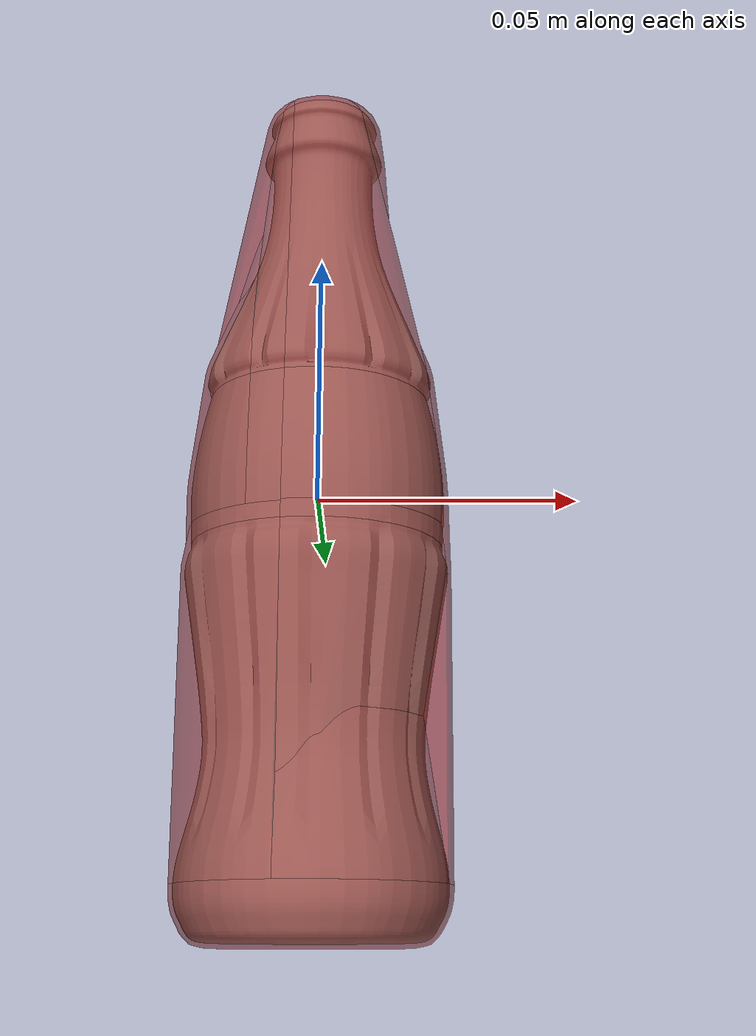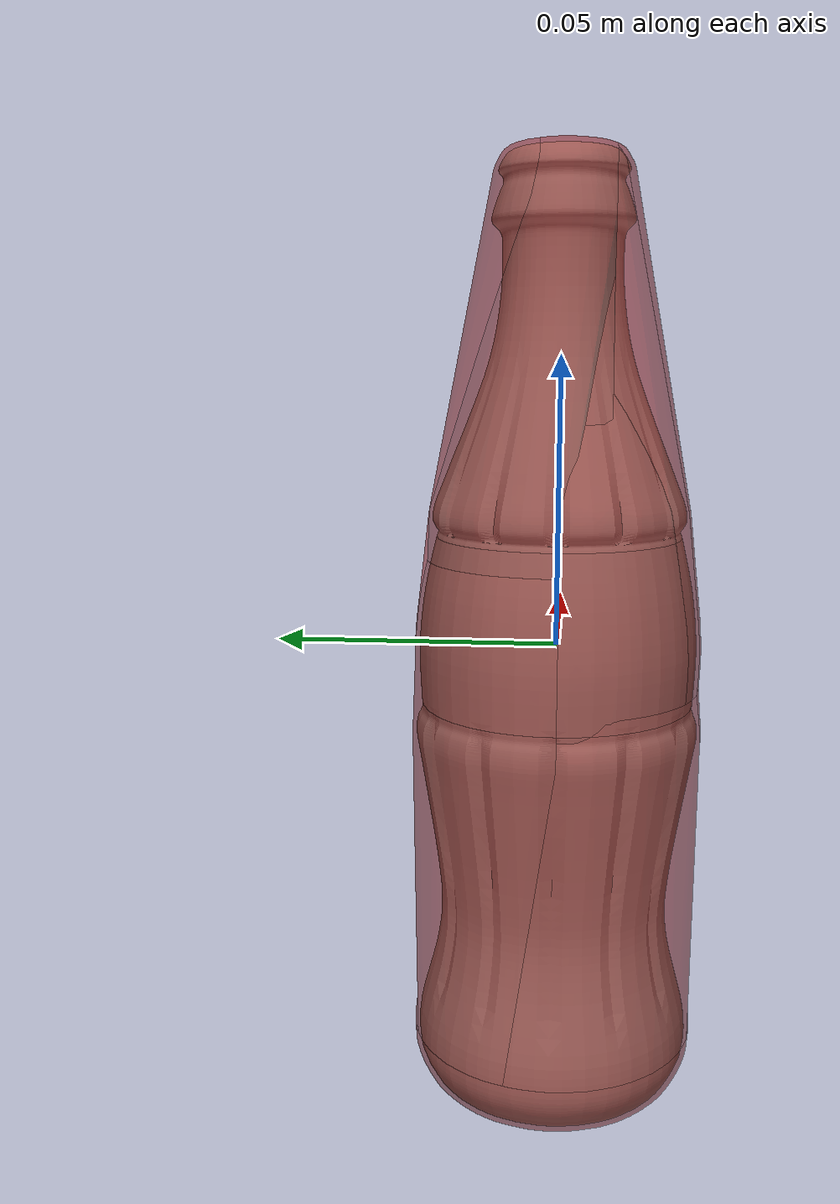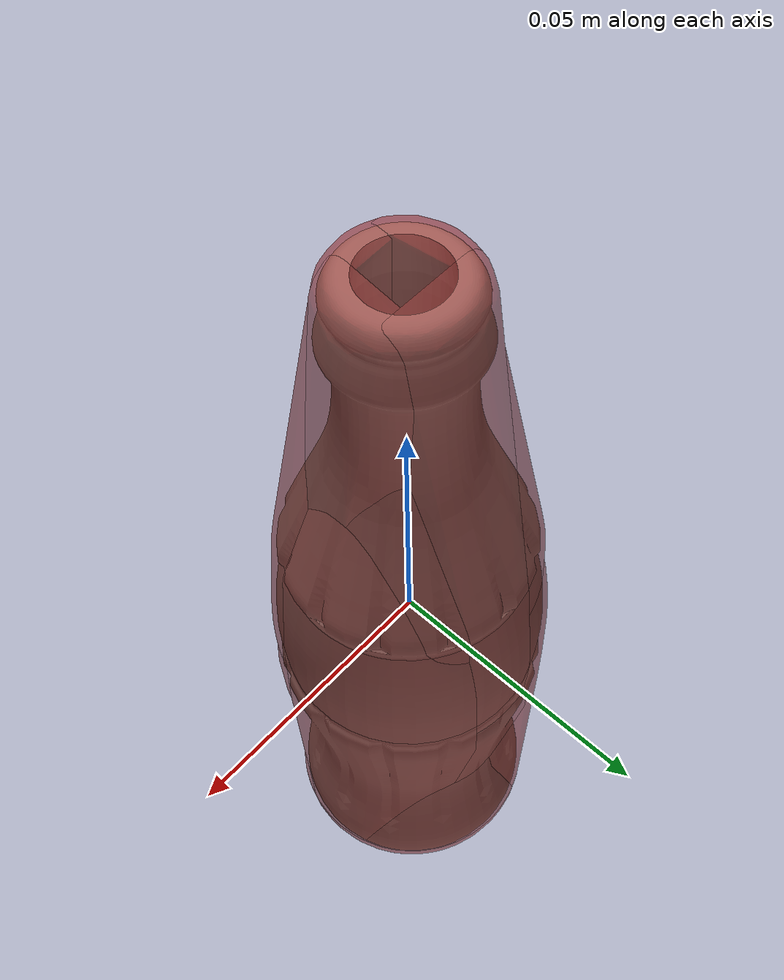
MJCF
<mujoco model="bottled_drink_5">
  <asset>
    <mesh file="visual/model_normalized_0.obj" name="model_normalized_0_vis" scale="0.16499999999999998 0.16499999999999998 0.16499999999999998" refquat="1.0 0.0 0.0 0.0"/>
    <mesh file="visual/model_normalized_1.obj" name="model_normalized_1_vis" scale="0.16499999999999998 0.16499999999999998 0.16499999999999998" refquat="1.0 0.0 0.0 0.0"/>
    <mesh file="visual/model_normalized_2.obj" name="model_normalized_2_vis" scale="0.16499999999999998 0.16499999999999998 0.16499999999999998" refquat="1.0 0.0 0.0 0.0"/>
    <texture type="2d" name="image0" file="visual/image0.png"/>
    <material name="txt_bottle" texture="image0" specular="0.5" shininess="0.359999993"/>
    <material name="txt_label" texture="image0" specular="0.5" shininess="0.359999993"/>
    <material name="txt_label_back" texture="image0" specular="0.5" shininess="0.359999993"/>
    <mesh file="collision/collision_mesh_collision_0.obj" name="bottled_collision_mesh_0" scale="0.16499999999999998 0.16499999999999998 0.16499999999999998" refquat="1.0 0.0 0.0 0.0"/>
    <mesh file="collision/collision_mesh_collision_1.obj" name="bottled_collision_mesh_1" scale="0.16499999999999998 0.16499999999999998 0.16499999999999998" refquat="1.0 0.0 0.0 0.0"/>
    <mesh file="collision/collision_mesh_collision_2.obj" name="bottled_collision_mesh_2" scale="0.16499999999999998 0.16499999999999998 0.16499999999999998" refquat="1.0 0.0 0.0 0.0"/>
    <mesh file="collision/collision_mesh_collision_3.obj" name="bottled_collision_mesh_3" scale="0.16499999999999998 0.16499999999999998 0.16499999999999998" refquat="1.0 0.0 0.0 0.0"/>
    <mesh file="collision/collision_mesh_collision_4.obj" name="bottled_collision_mesh_4" scale="0.16499999999999998 0.16499999999999998 0.16499999999999998" refquat="1.0 0.0 0.0 0.0"/>
    <mesh file="collision/collision_mesh_collision_5.obj" name="bottled_collision_mesh_5" scale="0.16499999999999998 0.16499999999999998 0.16499999999999998" refquat="1.0 0.0 0.0 0.0"/>
    <mesh file="collision/collision_mesh_collision_6.obj" name="bottled_collision_mesh_6" scale="0.16499999999999998 0.16499999999999998 0.16499999999999998" refquat="1.0 0.0 0.0 0.0"/>
    <mesh file="collision/collision_mesh_collision_7.obj" name="bottled_collision_mesh_7" scale="0.16499999999999998 0.16499999999999998 0.16499999999999998" refquat="1.0 0.0 0.0 0.0"/>
    <mesh file="collision/collision_mesh_collision_8.obj" name="bottled_collision_mesh_8" scale="0.16499999999999998 0.16499999999999998 0.16499999999999998" refquat="1.0 0.0 0.0 0.0"/>
    <mesh file="collision/collision_mesh_collision_9.obj" name="bottled_collision_mesh_9" scale="0.16499999999999998 0.16499999999999998 0.16499999999999998" refquat="1.0 0.0 0.0 0.0"/>
    <mesh file="collision/collision_mesh_collision_10.obj" name="bottled_collision_mesh_10" scale="0.16499999999999998 0.16499999999999998 0.16499999999999998" refquat="1.0 0.0 0.0 0.0"/>
    <mesh file="collision/collision_mesh_collision_11.obj" name="bottled_collision_mesh_11" scale="0.16499999999999998 0.16499999999999998 0.16499999999999998" refquat="1.0 0.0 0.0 0.0"/>
    <mesh file="collision/collision_mesh_collision_12.obj" name="bottled_collision_mesh_12" scale="0.16499999999999998 0.16499999999999998 0.16499999999999998" refquat="1.0 0.0 0.0 0.0"/>
    <mesh file="collision/collision_mesh_collision_13.obj" name="bottled_collision_mesh_13" scale="0.16499999999999998 0.16499999999999998 0.16499999999999998" refquat="1.0 0.0 0.0 0.0"/>
    <mesh file="collision/collision_mesh_collision_14.obj" name="bottled_collision_mesh_14" scale="0.16499999999999998 0.16499999999999998 0.16499999999999998" refquat="1.0 0.0 0.0 0.0"/>
    <mesh file="collision/collision_mesh_collision_15.obj" name="bottled_collision_mesh_15" scale="0.16499999999999998 0.16499999999999998 0.16499999999999998" refquat="1.0 0.0 0.0 0.0"/>
  </asset>
  <default>
    <default class="region">
      <geom group="1" conaffinity="0" contype="0" rgba="0 1 0 0"/>
    </default>
    <default class="collision">
      <geom group="0" rgba="0.5 0 0 0.5" density="1000.0"/>
    </default>
  </default>
  <worldbody>
    <body>
      <body name="object">
        <geom solimp="0.998 0.998 0.001" solref="0.001 1" density="100" friction="0.95 0.3 0.1" type="mesh" mesh="model_normalized_0_vis" conaffinity="0" contype="0" group="1" material="txt_label_back"/>
        <geom solimp="0.998 0.998 0.001" solref="0.001 1" density="100" friction="0.95 0.3 0.1" type="mesh" mesh="model_normalized_1_vis" conaffinity="0" contype="0" group="1" material="txt_label"/>
        <geom solimp="0.998 0.998 0.001" solref="0.001 1" density="100" friction="0.95 0.3 0.1" type="mesh" mesh="model_normalized_2_vis" conaffinity="0" contype="0" group="1" material="txt_bottle"/>
        <geom class="region" name="reg_bbox" type="box" pos="0.0 -4.3724999999883436e-08 -4.020472500000066e-05" size="0.025667358749999997 0.025672428374999997 0.08335884067499999"/>
        <geom mesh="bottled_collision_mesh_0" type="mesh" class="collision"/>
        <geom mesh="bottled_collision_mesh_1" type="mesh" class="collision"/>
        <geom mesh="bottled_collision_mesh_2" type="mesh" class="collision"/>
        <geom mesh="bottled_collision_mesh_3" type="mesh" class="collision"/>
        <geom mesh="bottled_collision_mesh_4" type="mesh" class="collision"/>
        <geom mesh="bottled_collision_mesh_5" type="mesh" class="collision"/>
        <geom mesh="bottled_collision_mesh_6" type="mesh" class="collision"/>
        <geom mesh="bottled_collision_mesh_7" type="mesh" class="collision"/>
        <geom mesh="bottled_collision_mesh_8" type="mesh" class="collision"/>
        <geom mesh="bottled_collision_mesh_9" type="mesh" class="collision"/>
        <geom mesh="bottled_collision_mesh_10" type="mesh" class="collision"/>
        <geom mesh="bottled_collision_mesh_11" type="mesh" class="collision"/>
        <geom mesh="bottled_collision_mesh_12" type="mesh" class="collision"/>
        <geom mesh="bottled_collision_mesh_13" type="mesh" class="collision"/>
        <geom mesh="bottled_collision_mesh_14" type="mesh" class="collision"/>
        <geom mesh="bottled_collision_mesh_15" type="mesh" class="collision"/>
      </body>
    </body>
  </worldbody>
</mujoco>
